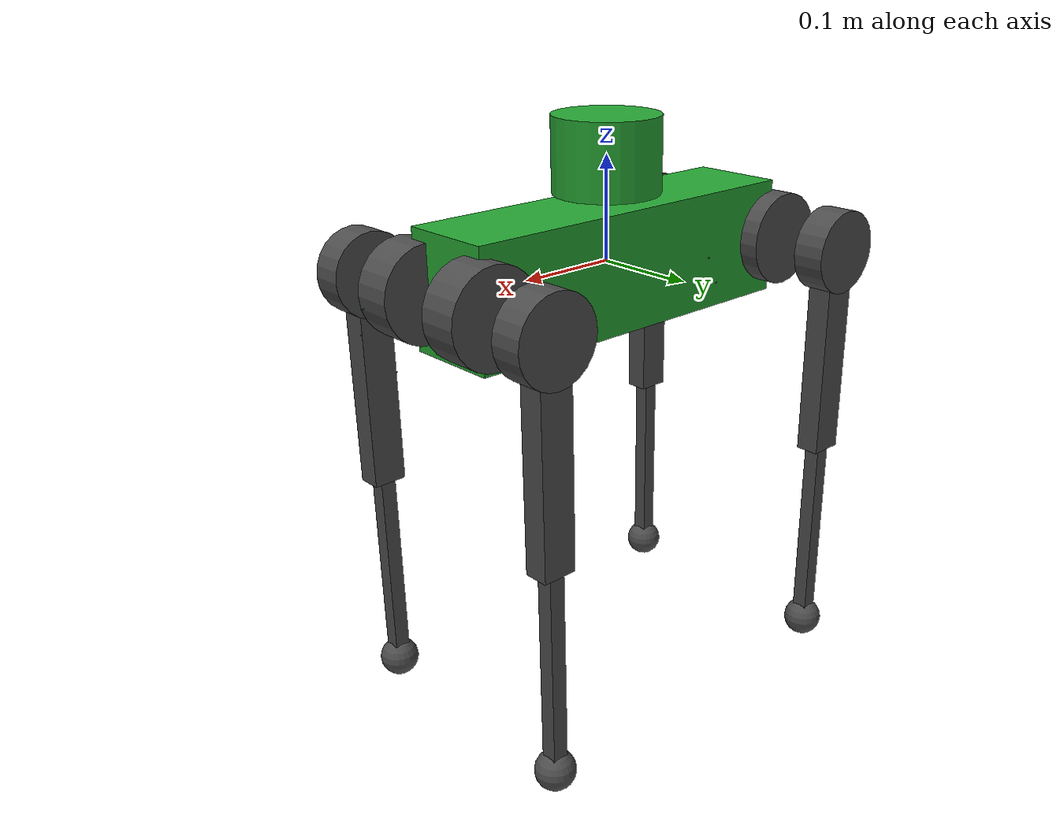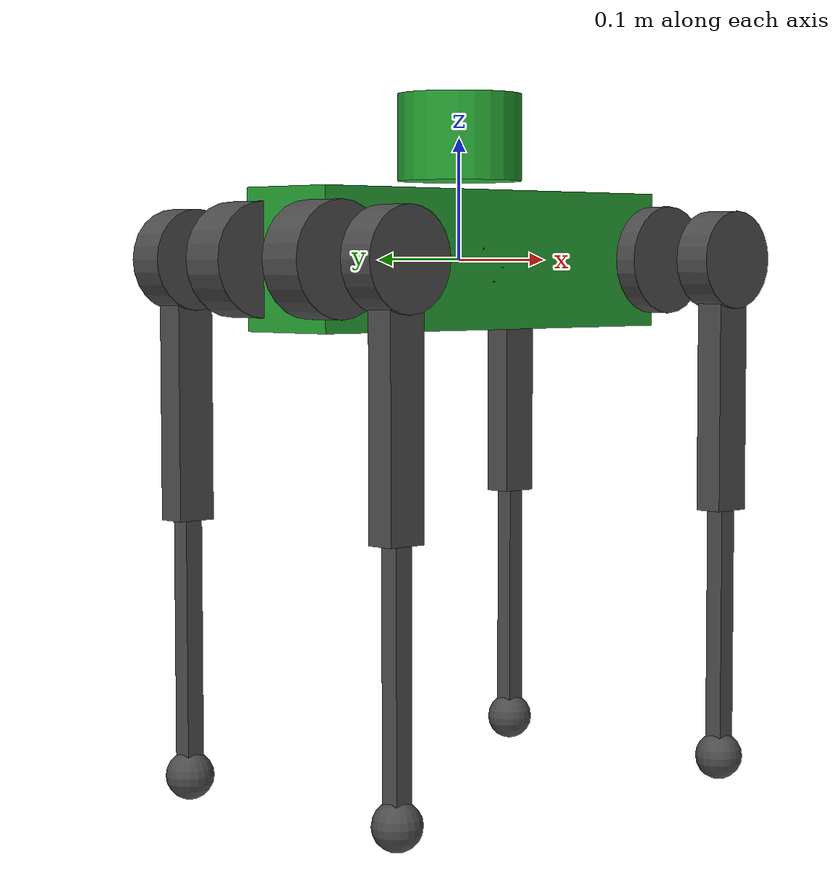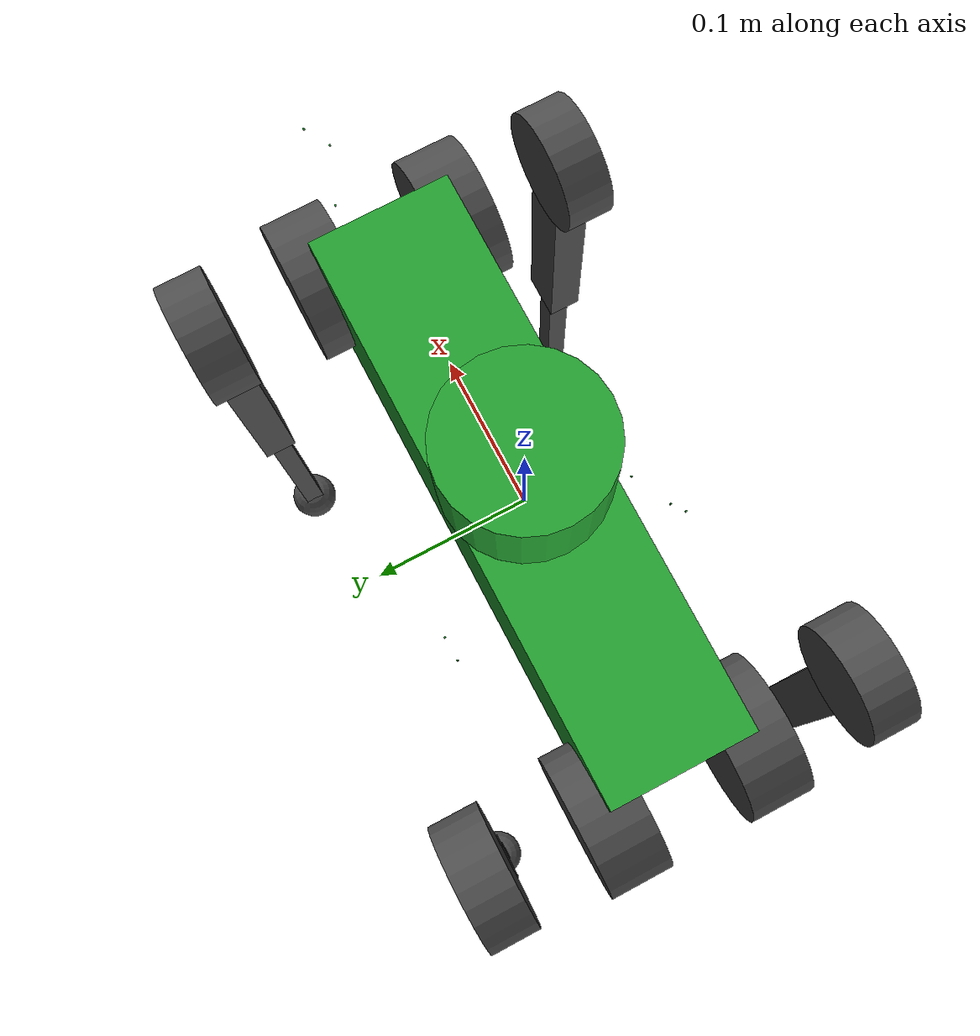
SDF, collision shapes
<?xml version='1.0'?>
<sdf version='1.7'>
  <model name='go1'>
    <link name='base'>
      <inertial>
        <pose>0.019196 0.001711 0.013585 0 -0 0</pose>
        <mass>6.04508</mass>
        <inertia>
          <ixx>0.0251921</ixx>
          <ixy>0.000428936</ixy>
          <ixz>0.00187116</ixz>
          <iyy>0.0743193</iyy>
          <iyz>0.000181968</iyz>
          <izz>0.0757561</izz>
        </inertia>
      </inertial>
      <collision name='base_fixed_joint_lump__trunk_collision'>
        <pose>0 0 0 0 -0 0</pose>
        <geometry>
          <box>
            <size>0.3762 0.0935 0.114</size>
          </box>
        </geometry>
        <surface>
          <contact>
            <ode>
              <kp>1e+06</kp>
              <kd>1</kd>
            </ode>
          </contact>
          <friction>
            <ode>
              <mu>0.2</mu>
              <mu2>0.2</mu2>
            </ode>
          </friction>
        </surface>
      </collision>
      <collision name='base_fixed_joint_lump__camera_chin_collision_1'>
        <pose>0.2522 0.0125 -0.0436 3.14159 1.5708 0</pose>
        <geometry>
          <box>
            <size>0.001 0.001 0.001</size>
          </box>
        </geometry>
        <surface>
          <contact>
            <ode/>
          </contact>
          <friction>
            <ode/>
          </friction>
        </surface>
      </collision>
      <collision name='base_fixed_joint_lump__camera_face_collision_2'>
        <pose>0.2785 0.0125 0.0167 3.14159 -0 0</pose>
        <geometry>
          <box>
            <size>0.001 0.001 0.001</size>
          </box>
        </geometry>
        <surface>
          <contact>
            <ode/>
          </contact>
          <friction>
            <ode/>
          </friction>
        </surface>
      </collision>
      <collision name='base_fixed_joint_lump__camera_left_collision_3'>
        <pose>-0.066 0.082 -0.0176 3.14159 0.2618 1.5708</pose>
        <geometry>
          <box>
            <size>0.001 0.001 0.001</size>
          </box>
        </geometry>
        <surface>
          <contact>
            <ode/>
          </contact>
          <friction>
            <ode/>
          </friction>
        </surface>
      </collision>
      <collision name='base_fixed_joint_lump__camera_rearDown_collision_4'>
        <pose>-0.0825 0.0125 -0.04365 3.14159 1.5708 0</pose>
        <geometry>
          <box>
            <size>0.001 0.001 0.001</size>
          </box>
        </geometry>
        <surface>
          <contact>
            <ode/>
          </contact>
          <friction>
            <ode/>
          </friction>
        </surface>
      </collision>
      <collision name='base_fixed_joint_lump__camera_right_collision_5'>
        <pose>-0.041 -0.082 -0.0176 3.14159 0.2618 -1.5708</pose>
        <geometry>
          <box>
            <size>0.001 0.001 0.001</size>
          </box>
        </geometry>
        <surface>
          <contact>
            <ode/>
          </contact>
          <friction>
            <ode/>
          </friction>
        </surface>
      </collision>
      <collision name='base_fixed_joint_lump__imu_link_collision_6'>
        <pose>-0.01592 -0.06659 -0.00617 0 -0 0</pose>
        <geometry>
          <box>
            <size>0.001 0.001 0.001</size>
          </box>
        </geometry>
        <surface>
          <contact>
            <ode/>
          </contact>
          <friction>
            <ode>
              <mu>0.2</mu>
              <mu2>0.2</mu2>
            </ode>
          </friction>
        </surface>
      </collision>
      <collision name='base_fixed_joint_lump__ultraSound_face_collision_7'>
        <pose>0.2747 0 -0.0088 0 -0 0</pose>
        <geometry>
          <box>
            <size>0.001 0.001 0.001</size>
          </box>
        </geometry>
      </collision>
      <collision name='base_fixed_joint_lump__ultraSound_left_collision_8'>
        <pose>-0.0535 0.0826 0.00868 0 0.2618 1.5708</pose>
        <geometry>
          <box>
            <size>0.001 0.001 0.001</size>
          </box>
        </geometry>
      </collision>
      <collision name='base_fixed_joint_lump__ultraSound_right_collision_9'>
        <pose>-0.0535 -0.0826 0.00868 0 0.2618 -1.5708</pose>
        <geometry>
          <box>
            <size>0.001 0.001 0.001</size>
          </box>
        </geometry>
      </collision>
      <collision name='base_fixed_joint_lump__velodyne_base_link_collision_10'>
        <pose>0 0 0.10085 0 -0 0</pose>
        <geometry>
          <cylinder>
            <length>0.0717</length>
            <radius>0.0516</radius>
          </cylinder>
        </geometry>
      </collision>
      <visual name='base_visual'>
        <pose>0 0 0 0 -0 0</pose>
        <geometry>
          <box>
            <size>0.001 0.001 0.001</size>
          </box>
        </geometry>
        <material>
          <script>
            <name>Gazebo/Green</name>
            <uri>file://media/materials/scripts/gazebo.material</uri>
          </script>
        </material>
      </visual>
      <visual name='base_fixed_joint_lump__trunk_visual_1'>
        <pose>0 0 0 0 -0 0</pose>
        <geometry>
          <mesh>
            <scale>1 1 1</scale>
            <uri>package://go1/meshes/trunk.dae</uri>
          </mesh>
        </geometry>
      </visual>
      <visual name='base_fixed_joint_lump__camera_chin_visual_2'>
        <pose>0.2522 0.0125 -0.0436 3.14159 1.5708 0</pose>
        <geometry>
          <mesh>
            <scale>1 1 1</scale>
            <uri>package://go1/meshes/depthCamera.dae</uri>
          </mesh>
        </geometry>
      </visual>
      <visual name='base_fixed_joint_lump__camera_face_visual_3'>
        <pose>0.2785 0.0125 0.0167 3.14159 -0 0</pose>
        <geometry>
          <mesh>
            <scale>1 1 1</scale>
            <uri>package://go1/meshes/depthCamera.dae</uri>
          </mesh>
        </geometry>
      </visual>
      <visual name='base_fixed_joint_lump__camera_left_visual_4'>
        <pose>-0.066 0.082 -0.0176 3.14159 0.2618 1.5708</pose>
        <geometry>
          <mesh>
            <scale>1 1 1</scale>
            <uri>package://go1/meshes/depthCamera.dae</uri>
          </mesh>
        </geometry>
      </visual>
      <visual name='base_fixed_joint_lump__camera_rearDown_visual_5'>
        <pose>-0.0825 0.0125 -0.04365 3.14159 1.5708 0</pose>
        <geometry>
          <mesh>
            <scale>1 1 1</scale>
            <uri>package://go1/meshes/depthCamera.dae</uri>
          </mesh>
        </geometry>
      </visual>
      <visual name='base_fixed_joint_lump__camera_right_visual_6'>
        <pose>-0.041 -0.082 -0.0176 3.14159 0.2618 -1.5708</pose>
        <geometry>
          <mesh>
            <scale>1 1 1</scale>
            <uri>package://go1/meshes/depthCamera.dae</uri>
          </mesh>
        </geometry>
      </visual>
      <visual name='base_fixed_joint_lump__imu_link_visual_7'>
        <pose>-0.01592 -0.06659 -0.00617 0 -0 0</pose>
        <geometry>
          <box>
            <size>0.001 0.001 0.001</size>
          </box>
        </geometry>
        <material>
          <script>
            <name>Gazebo/Red</name>
            <uri>file://media/materials/scripts/gazebo.material</uri>
          </script>
        </material>
      </visual>
      <visual name='base_fixed_joint_lump__ultraSound_face_visual_8'>
        <pose>0.2747 0 -0.0088 0 -0 0</pose>
        <geometry>
          <mesh>
            <scale>1 1 1</scale>
            <uri>package://go1/meshes/ultraSound.dae</uri>
          </mesh>
        </geometry>
      </visual>
      <visual name='base_fixed_joint_lump__ultraSound_left_visual_9'>
        <pose>-0.0535 0.0826 0.00868 0 0.2618 1.5708</pose>
        <geometry>
          <mesh>
            <scale>1 1 1</scale>
            <uri>package://go1/meshes/ultraSound.dae</uri>
          </mesh>
        </geometry>
      </visual>
      <visual name='base_fixed_joint_lump__ultraSound_right_visual_10'>
        <pose>-0.0535 -0.0826 0.00868 0 0.2618 -1.5708</pose>
        <geometry>
          <mesh>
            <scale>1 1 1</scale>
            <uri>package://go1/meshes/ultraSound.dae</uri>
          </mesh>
        </geometry>
      </visual>
      <visual name='base_fixed_joint_lump__velodyne_base_link_visual_11'>
        <pose>0 0 0.065 0 -0 0</pose>
        <geometry>
          <mesh>
            <scale>1 1 1</scale>
            <uri>package://go1/meshes/VLP16_base_1.dae</uri>
          </mesh>
        </geometry>
      </visual>
      <visual name='base_fixed_joint_lump__velodyne_base_link_visual_12'>
        <pose>0 0 0.065 0 -0 0</pose>
        <geometry>
          <mesh>
            <scale>1 1 1</scale>
            <uri>package://go1/meshes/VLP16_base_2.dae</uri>
          </mesh>
        </geometry>
      </visual>
      <visual name='base_fixed_joint_lump__velodyne_visual_13'>
        <pose>0 0 0.065 0 -0 0</pose>
        <geometry>
          <mesh>
            <scale>1 1 1</scale>
            <uri>package://go1/meshes/VLP16_scan.dae</uri>
          </mesh>
        </geometry>
      </visual>
      <gravity>1</gravity>
      <sensor name='camera_chin_camera' type='depth'>
        <update_rate>16</update_rate>
        <camera>
          <horizontal_fov>2.094</horizontal_fov>
          <image>
            <width>928</width>
            <height>800</height>
            <format>R8G8B8</format>
          </image>
          <clip>
            <near>0.1</near>
            <far>5</far>
          </clip>
        </camera>
        <plugin name='camera_chin_controller' filename='libgazebo_ros_openni_kinect.so'>
          <baseline>0.025</baseline>
          <alwaysOn>1</alwaysOn>
          <updateRate>0.0</updateRate>
          <cameraName>camera_chin_ir</cameraName>
          <imageTopicName>/camera_chin/color/image_raw</imageTopicName>
          <cameraInfoTopicName>/camera_chin/color/camera_info</cameraInfoTopicName>
          <depthImageTopicName>/camera_chin/depth/image_raw</depthImageTopicName>
          <depthImageInfoTopicName>/camera_chin/depth/camera_info</depthImageInfoTopicName>
          <pointCloudTopicName>/cam2/point_cloud_chin</pointCloudTopicName>
          <frameName>camera_optical_chin</frameName>
          <pointCloudCutoff>0.1</pointCloudCutoff>
          <pointCloudCutoffMax>1.5</pointCloudCutoffMax>
          <distortionK1>0.0</distortionK1>
          <distortionK2>0.0</distortionK2>
          <distortionK3>0.0</distortionK3>
          <distortionT1>0.0</distortionT1>
          <distortionT2>0.0</distortionT2>
          <CxPrime>0</CxPrime>
          <Cx>0.0045</Cx>
          <Cy>0.0039</Cy>
          <focalLength>0</focalLength>
          <hackBaseline>0</hackBaseline>
        </plugin>
        <pose>0.2522 0.0125 -0.0436 3.14159 1.57079 3e-06</pose>
      </sensor>
      <sensor name='camera_face_camera' type='depth'>
        <update_rate>16</update_rate>
        <camera>
          <horizontal_fov>2.094</horizontal_fov>
          <image>
            <width>928</width>
            <height>800</height>
            <format>R8G8B8</format>
          </image>
          <clip>
            <near>0.1</near>
            <far>5</far>
          </clip>
        </camera>
        <plugin name='camera_face_controller' filename='libgazebo_ros_openni_kinect.so'>
          <baseline>0.025</baseline>
          <alwaysOn>1</alwaysOn>
          <updateRate>0.0</updateRate>
          <cameraName>camera_face_ir</cameraName>
          <imageTopicName>/camera_face/color/image_raw</imageTopicName>
          <cameraInfoTopicName>/camera_face/color/camera_info</cameraInfoTopicName>
          <depthImageTopicName>/camera_face/depth/image_raw</depthImageTopicName>
          <depthImageInfoTopicName>/camera_face/depth/camera_info</depthImageInfoTopicName>
          <pointCloudTopicName>/cam1/point_cloud_face</pointCloudTopicName>
          <frameName>camera_optical_face</frameName>
          <pointCloudCutoff>0.1</pointCloudCutoff>
          <pointCloudCutoffMax>1.5</pointCloudCutoffMax>
          <distortionK1>0.0</distortionK1>
          <distortionK2>0.0</distortionK2>
          <distortionK3>0.0</distortionK3>
          <distortionT1>0.0</distortionT1>
          <distortionT2>0.0</distortionT2>
          <CxPrime>0</CxPrime>
          <Cx>0.0045</Cx>
          <Cy>0.0039</Cy>
          <focalLength>0</focalLength>
          <hackBaseline>0</hackBaseline>
        </plugin>
        <pose>0.2785 0.0125 0.0167 3.14159 -0 0</pose>
      </sensor>
      <sensor name='camera_left_camera' type='depth'>
        <update_rate>16</update_rate>
        <camera>
          <horizontal_fov>2.094</horizontal_fov>
          <image>
            <width>928</width>
            <height>800</height>
            <format>R8G8B8</format>
          </image>
          <clip>
            <near>0.1</near>
            <far>5</far>
          </clip>
        </camera>
        <plugin name='camera_left_controller' filename='libgazebo_ros_openni_kinect.so'>
          <baseline>0.025</baseline>
          <alwaysOn>1</alwaysOn>
          <updateRate>0.0</updateRate>
          <cameraName>camera_left_ir</cameraName>
          <imageTopicName>/camera_left/color/image_raw</imageTopicName>
          <cameraInfoTopicName>/camera_left/color/camera_info</cameraInfoTopicName>
          <depthImageTopicName>/camera_left/depth/image_raw</depthImageTopicName>
          <depthImageInfoTopicName>/camera_left/depth/camera_info</depthImageInfoTopicName>
          <pointCloudTopicName>/cam3/point_cloud_left</pointCloudTopicName>
          <frameName>camera_optical_left</frameName>
          <pointCloudCutoff>0.1</pointCloudCutoff>
          <pointCloudCutoffMax>1.5</pointCloudCutoffMax>
          <distortionK1>0.0</distortionK1>
          <distortionK2>0.0</distortionK2>
          <distortionK3>0.0</distortionK3>
          <distortionT1>0.0</distortionT1>
          <distortionT2>0.0</distortionT2>
          <CxPrime>0</CxPrime>
          <Cx>0.0045</Cx>
          <Cy>0.0039</Cy>
          <focalLength>0</focalLength>
          <hackBaseline>0</hackBaseline>
        </plugin>
        <pose>-0.066 0.082 -0.0176 3.14159 0.2618 1.5708</pose>
      </sensor>
      <sensor name='camera_rearDown_camera' type='depth'>
        <update_rate>16</update_rate>
        <camera>
          <horizontal_fov>2.094</horizontal_fov>
          <image>
            <width>928</width>
            <height>800</height>
            <format>R8G8B8</format>
          </image>
          <clip>
            <near>0.1</near>
            <far>5</far>
          </clip>
        </camera>
        <plugin name='camera_rearDown_controller' filename='libgazebo_ros_openni_kinect.so'>
          <baseline>0.025</baseline>
          <alwaysOn>1</alwaysOn>
          <updateRate>0.0</updateRate>
          <cameraName>camera_rearDown_ir</cameraName>
          <imageTopicName>/camera_rearDown/color/image_raw</imageTopicName>
          <cameraInfoTopicName>/camera_rearDown/color/camera_info</cameraInfoTopicName>
          <depthImageTopicName>/camera_rearDown/depth/image_raw</depthImageTopicName>
          <depthImageInfoTopicName>/camera_rearDown/depth/camera_info</depthImageInfoTopicName>
          <pointCloudTopicName>/cam5/point_cloud_rearDown</pointCloudTopicName>
          <frameName>camera_optical_rearDown</frameName>
          <pointCloudCutoff>0.1</pointCloudCutoff>
          <pointCloudCutoffMax>1.5</pointCloudCutoffMax>
          <distortionK1>0.0</distortionK1>
          <distortionK2>0.0</distortionK2>
          <distortionK3>0.0</distortionK3>
          <distortionT1>0.0</distortionT1>
          <distortionT2>0.0</distortionT2>
          <CxPrime>0</CxPrime>
          <Cx>0.0045</Cx>
          <Cy>0.0039</Cy>
          <focalLength>0</focalLength>
          <hackBaseline>0</hackBaseline>
        </plugin>
        <pose>-0.0825 0.0125 -0.04365 3.14159 1.57079 3e-06</pose>
      </sensor>
      <sensor name='camera_right_camera' type='depth'>
        <update_rate>16</update_rate>
        <camera>
          <horizontal_fov>2.094</horizontal_fov>
          <image>
            <width>928</width>
            <height>800</height>
            <format>R8G8B8</format>
          </image>
          <clip>
            <near>0.1</near>
            <far>5</far>
          </clip>
        </camera>
        <plugin name='camera_right_controller' filename='libgazebo_ros_openni_kinect.so'>
          <baseline>0.025</baseline>
          <alwaysOn>1</alwaysOn>
          <updateRate>0.0</updateRate>
          <cameraName>camera_right_ir</cameraName>
          <imageTopicName>/camera_right/color/image_raw</imageTopicName>
          <cameraInfoTopicName>/camera_right/color/camera_info</cameraInfoTopicName>
          <depthImageTopicName>/camera_right/depth/image_raw</depthImageTopicName>
          <depthImageInfoTopicName>/camera_right/depth/camera_info</depthImageInfoTopicName>
          <pointCloudTopicName>/cam4/point_cloud_right</pointCloudTopicName>
          <frameName>camera_optical_right</frameName>
          <pointCloudCutoff>0.1</pointCloudCutoff>
          <pointCloudCutoffMax>1.5</pointCloudCutoffMax>
          <distortionK1>0.0</distortionK1>
          <distortionK2>0.0</distortionK2>
          <distortionK3>0.0</distortionK3>
          <distortionT1>0.0</distortionT1>
          <distortionT2>0.0</distortionT2>
          <CxPrime>0</CxPrime>
          <Cx>0.0045</Cx>
          <Cy>0.0039</Cy>
          <focalLength>0</focalLength>
          <hackBaseline>0</hackBaseline>
        </plugin>
        <pose>-0.041 -0.082 -0.0176 3.14159 0.2618 -1.5708</pose>
      </sensor>
      <gravity>1</gravity>
      <sensor name='imu_sensor' type='imu'>
        <always_on>1</always_on>
        <update_rate>1000</update_rate>
        <visualize>1</visualize>
        <topic>__default_topic__</topic>
        <plugin name='imu_plugin' filename='libgazebo_ros_imu_sensor.so'>
          <topicName>trunk_imu</topicName>
          <bodyName>imu_link</bodyName>
          <updateRateHZ>1000.0</updateRateHZ>
          <gaussianNoise>0.0</gaussianNoise>
          <xyzOffset>0 0 0</xyzOffset>
          <rpyOffset>0 0 0</rpyOffset>
          <frameName>imu_link</frameName>
        </plugin>
        <pose>-0.01592 -0.06659 -0.00617 0 -0 0</pose>
      </sensor>
      <sensor name='velodyne-VLP16' type='ray'>
        <visualize>0</visualize>
        <update_rate>10</update_rate>
        <ray>
          <scan>
            <horizontal>
              <samples>1024</samples>
              <resolution>1</resolution>
              <min_angle>-3.14159</min_angle>
              <max_angle>3.14159</max_angle>
            </horizontal>
            <vertical>
              <samples>16</samples>
              <resolution>1</resolution>
              <min_angle>-0.261799</min_angle>
              <max_angle>0.261799</max_angle>
            </vertical>
          </scan>
          <range>
            <min>0.3</min>
            <max>101</max>
            <resolution>0.001</resolution>
          </range>
          <noise>
            <type>gaussian</type>
            <mean>0</mean>
            <stddev>0</stddev>
          </noise>
        </ray>
        <plugin name='gazebo_ros_laser_controller' filename='libgazebo_ros_velodyne_laser.so'>
          <topicName>velodyne_points</topicName>
          <frameName>velodyne</frameName>
          <min_range>0.9</min_range>
          <max_range>100</max_range>
          <gaussianNoise>0.008</gaussianNoise>
        </plugin>
        <pose>0 0 0.1027 0 -0 0</pose>
      </sensor>
    </link>
    <joint name='FL_hip_joint' type='revolute'>
      <pose relative_to='base'>0.1881 0.04675 0 0 -0 0</pose>
      <parent>base</parent>
      <child>FL_hip</child>
      <axis>
        <xyz>1 0 0</xyz>
        <limit>
          <lower>-1.0472</lower>
          <upper>1.0472</upper>
          <effort>23.7</effort>
          <velocity>30.1</velocity>
        </limit>
        <dynamics>
          <damping>0.01</damping>
          <friction>0.2</friction>
          <spring_reference>0</spring_reference>
          <spring_stiffness>0</spring_stiffness>
        </dynamics>
      </axis>
    </joint>
    <link name='FL_hip'>
      <pose relative_to='FL_hip_joint'>0 0 0 0 -0 0</pose>
      <inertial>
        <pose>-0.00541 -0.00074 6e-06 0 -0 0</pose>
        <mass>0.591</mass>
        <inertia>
          <ixx>0.000374268</ixx>
          <ixy>3.68444e-05</ixy>
          <ixz>-9.86754e-07</ixz>
          <iyy>0.000635924</iyy>
          <iyz>-1.17289e-06</iyz>
          <izz>0.000457647</izz>
        </inertia>
      </inertial>
      <collision name='FL_hip_collision'>
        <pose>0 0 0 1.5708 -0 0</pose>
        <geometry>
          <cylinder>
            <length>0.04</length>
            <radius>0.046</radius>
          </cylinder>
        </geometry>
        <surface>
          <contact>
            <ode/>
          </contact>
          <friction>
            <ode>
              <mu>0.2</mu>
              <mu2>0.2</mu2>
            </ode>
          </friction>
        </surface>
      </collision>
      <collision name='FL_hip_fixed_joint_lump__FL_thigh_shoulder_collision_1'>
        <pose>0 0.08 0 1.5708 -0 0</pose>
        <geometry>
          <cylinder>
            <length>0.032</length>
            <radius>0.041</radius>
          </cylinder>
        </geometry>
      </collision>
      <visual name='FL_hip_visual'>
        <pose>0 0 0 0 -0 0</pose>
        <geometry>
          <mesh>
            <scale>1 1 1</scale>
            <uri>package://go1/meshes/hip.dae</uri>
          </mesh>
        </geometry>
        <material>
          <script>
            <name>Gazebo/DarkGrey</name>
            <uri>file://media/materials/scripts/gazebo.material</uri>
          </script>
        </material>
      </visual>
    </link>
    <joint name='FL_thigh_joint' type='revolute'>
      <pose relative_to='FL_hip'>0 0.08 0 0 -0 0</pose>
      <parent>FL_hip</parent>
      <child>FL_thigh</child>
      <axis>
        <xyz>0 1 0</xyz>
        <limit>
          <lower>-0.663225</lower>
          <upper>2.96706</upper>
          <effort>23.7</effort>
          <velocity>30.1</velocity>
        </limit>
        <dynamics>
          <damping>0.01</damping>
          <friction>0.2</friction>
          <spring_reference>0</spring_reference>
          <spring_stiffness>0</spring_stiffness>
        </dynamics>
      </axis>
    </joint>
    <link name='FL_thigh'>
      <pose relative_to='FL_thigh_joint'>0 0 0 0 -0 0</pose>
      <inertial>
        <pose>-0.003468 -0.018947 -0.032736 0 -0 0</pose>
        <mass>0.92</mass>
        <inertia>
          <ixx>0.00585156</ixx>
          <ixy>1.78328e-06</ixy>
          <ixz>0.000328291</ixz>
          <iyy>0.00559616</iyy>
          <iyz>2.14307e-05</iyz>
          <izz>0.00107157</izz>
        </inertia>
      </inertial>
      <collision name='FL_thigh_collision'>
        <pose>0 0 -0.1065 0 1.5708 0</pose>
        <geometry>
          <box>
            <size>0.213 0.0245 0.034</size>
          </box>
        </geometry>
        <surface>
          <contact>
            <ode>
              <kp>1e+06</kp>
              <kd>1</kd>
            </ode>
          </contact>
          <friction>
            <ode>
              <mu>0.2</mu>
              <mu2>0.2</mu2>
            </ode>
          </friction>
        </surface>
      </collision>
      <visual name='FL_thigh_visual'>
        <pose>0 0 0 0 -0 0</pose>
        <geometry>
          <mesh>
            <scale>1 1 1</scale>
            <uri>package://go1/meshes/thigh.dae</uri>
          </mesh>
        </geometry>
        <material>
          <script>
            <name>Gazebo/DarkGrey</name>
            <uri>file://media/materials/scripts/gazebo.material</uri>
          </script>
        </material>
      </visual>
      <self_collide>1</self_collide>
    </link>
    <joint name='FL_calf_joint' type='revolute'>
      <pose relative_to='FL_thigh'>0 0 -0.213 0 -0 0</pose>
      <parent>FL_thigh</parent>
      <child>FL_calf</child>
      <axis>
        <xyz>0 1 0</xyz>
        <limit>
          <lower>-2.72271</lower>
          <upper>-0.837758</upper>
          <effort>23.7</effort>
          <velocity>30.1</velocity>
        </limit>
        <dynamics>
          <damping>0.01</damping>
          <friction>0.2</friction>
          <spring_reference>0</spring_reference>
          <spring_stiffness>0</spring_stiffness>
        </dynamics>
      </axis>
    </joint>
    <link name='FL_calf'>
      <pose relative_to='FL_calf_joint'>0 0 0 0 -0 0</pose>
      <inertial>
        <pose>0.004311 0.000896 -0.150771 0 -0 0</pose>
        <mass>0.191</mass>
        <inertia>
          <ixx>0.00328762</ixx>
          <ixy>1.1028e-06</ixy>
          <ixz>-0.00012883</ixz>
          <iyy>0.00330576</iyy>
          <iyz>-2.92778e-05</iyz>
          <izz>4.15697e-05</izz>
        </inertia>
      </inertial>
      <collision name='FL_calf_collision'>
        <pose>0 0 -0.1065 0 1.5708 0</pose>
        <geometry>
          <box>
            <size>0.213 0.016 0.016</size>
          </box>
        </geometry>
        <surface>
          <contact>
            <ode/>
          </contact>
          <friction>
            <ode>
              <mu>0.2</mu>
              <mu2>0.2</mu2>
            </ode>
          </friction>
        </surface>
      </collision>
      <collision name='FL_calf_fixed_joint_lump__FL_foot_collision_1'>
        <pose>0 0 -0.213 0 -0 0</pose>
        <geometry>
          <sphere>
            <radius>0.02</radius>
          </sphere>
        </geometry>
        <surface>
          <contact>
            <ode>
              <kp>1e+06</kp>
              <kd>1</kd>
            </ode>
          </contact>
          <friction>
            <ode>
              <mu>0.6</mu>
              <mu2>0.6</mu2>
            </ode>
          </friction>
        </surface>
      </collision>
      <visual name='FL_calf_visual'>
        <pose>0 0 0 0 -0 0</pose>
        <geometry>
          <mesh>
            <scale>1 1 1</scale>
            <uri>package://go1/meshes/calf.dae</uri>
          </mesh>
        </geometry>
      </visual>
      <visual name='FL_calf_fixed_joint_lump__FL_foot_visual_1'>
        <pose>0 0 -0.213 0 -0 0</pose>
        <geometry>
          <sphere>
            <radius>0.01</radius>
          </sphere>
        </geometry>
        <plugin name='drawForcePlugin' filename='libunitreeDrawForcePlugin.so'>
          <topicName>FL_foot_contact</topicName>
        </plugin>
        <material>
          <script>
            <name>Gazebo/DarkGrey</name>
            <uri>file://media/materials/scripts/gazebo.material</uri>
          </script>
        </material>
      </visual>
      <sensor name='FL_foot_contact' type='contact'>
        <update_rate>100</update_rate>
        <plugin name='contactPlugin' filename='libunitreeFootContactPlugin.so'/>
        <contact>
          <collision>FL_calf_fixed_joint_lump__FL_foot_collision_1</collision>
          <topic>__default_topic__</topic>
        </contact>
      </sensor>
      <self_collide>1</self_collide>
      <self_collide>1</self_collide>
    </link>
    <joint name='FR_hip_joint' type='revolute'>
      <pose relative_to='base'>0.1881 -0.04675 0 0 -0 0</pose>
      <parent>base</parent>
      <child>FR_hip</child>
      <axis>
        <xyz>1 0 0</xyz>
        <limit>
          <lower>-1.0472</lower>
          <upper>1.0472</upper>
          <effort>23.7</effort>
          <velocity>30.1</velocity>
        </limit>
        <dynamics>
          <damping>0.01</damping>
          <friction>0.2</friction>
          <spring_reference>0</spring_reference>
          <spring_stiffness>0</spring_stiffness>
        </dynamics>
      </axis>
    </joint>
    <link name='FR_hip'>
      <pose relative_to='FR_hip_joint'>0 0 0 0 -0 0</pose>
      <inertial>
        <pose>-0.00541 0.00074 6e-06 0 -0 0</pose>
        <mass>0.591</mass>
        <inertia>
          <ixx>0.000374268</ixx>
          <ixy>-3.68444e-05</ixy>
          <ixz>-9.86754e-07</ixz>
          <iyy>0.000635924</iyy>
          <iyz>1.17289e-06</iyz>
          <izz>0.000457647</izz>
        </inertia>
      </inertial>
      <collision name='FR_hip_collision'>
        <pose>0 0 0 1.5708 -0 0</pose>
        <geometry>
          <cylinder>
            <length>0.04</length>
            <radius>0.046</radius>
          </cylinder>
        </geometry>
        <surface>
          <contact>
            <ode/>
          </contact>
          <friction>
            <ode>
              <mu>0.2</mu>
              <mu2>0.2</mu2>
            </ode>
          </friction>
        </surface>
      </collision>
      <collision name='FR_hip_fixed_joint_lump__FR_thigh_shoulder_collision_1'>
        <pose>0 -0.08 0 1.5708 -0 0</pose>
        <geometry>
          <cylinder>
            <length>0.032</length>
            <radius>0.041</radius>
          </cylinder>
        </geometry>
      </collision>
      <visual name='FR_hip_visual'>
        <pose>0 0 0 3.14159 -0 0</pose>
        <geometry>
          <mesh>
            <scale>1 1 1</scale>
            <uri>package://go1/meshes/hip.dae</uri>
          </mesh>
        </geometry>
        <material>
          <script>
            <name>Gazebo/DarkGrey</name>
            <uri>file://media/materials/scripts/gazebo.material</uri>
          </script>
        </material>
      </visual>
    </link>
    <joint name='FR_thigh_joint' type='revolute'>
      <pose relative_to='FR_hip'>0 -0.08 0 0 -0 0</pose>
      <parent>FR_hip</parent>
      <child>FR_thigh</child>
      <axis>
        <xyz>0 1 0</xyz>
        <limit>
          <lower>-0.663225</lower>
          <upper>2.96706</upper>
          <effort>23.7</effort>
          <velocity>30.1</velocity>
        </limit>
        <dynamics>
          <damping>0.01</damping>
          <friction>0.2</friction>
          <spring_reference>0</spring_reference>
          <spring_stiffness>0</spring_stiffness>
        </dynamics>
      </axis>
    </joint>
    <link name='FR_thigh'>
      <pose relative_to='FR_thigh_joint'>0 0 0 0 -0 0</pose>
      <inertial>
        <pose>-0.003468 0.018947 -0.032736 0 -0 0</pose>
        <mass>0.92</mass>
        <inertia>
          <ixx>0.00585156</ixx>
          <ixy>-1.78328e-06</ixy>
          <ixz>0.000328291</ixz>
          <iyy>0.00559616</iyy>
          <iyz>-2.14307e-05</iyz>
          <izz>0.00107157</izz>
        </inertia>
      </inertial>
      <collision name='FR_thigh_collision'>
        <pose>0 0 -0.1065 0 1.5708 0</pose>
        <geometry>
          <box>
            <size>0.213 0.0245 0.034</size>
          </box>
        </geometry>
        <surface>
          <contact>
            <ode>
              <kp>1e+06</kp>
              <kd>1</kd>
            </ode>
          </contact>
          <friction>
            <ode>
              <mu>0.2</mu>
              <mu2>0.2</mu2>
            </ode>
          </friction>
        </surface>
      </collision>
      <visual name='FR_thigh_visual'>
        <pose>0 0 0 0 -0 0</pose>
        <geometry>
          <mesh>
            <scale>1 1 1</scale>
            <uri>package://go1/meshes/thigh_mirror.dae</uri>
          </mesh>
        </geometry>
        <material>
          <script>
            <name>Gazebo/DarkGrey</name>
            <uri>file://media/materials/scripts/gazebo.material</uri>
          </script>
        </material>
      </visual>
      <self_collide>1</self_collide>
    </link>
    <joint name='FR_calf_joint' type='revolute'>
      <pose relative_to='FR_thigh'>0 0 -0.213 0 -0 0</pose>
      <parent>FR_thigh</parent>
      <child>FR_calf</child>
      <axis>
        <xyz>0 1 0</xyz>
        <limit>
          <lower>-2.72271</lower>
          <upper>-0.837758</upper>
          <effort>23.7</effort>
          <velocity>30.1</velocity>
        </limit>
        <dynamics>
          <damping>0.01</damping>
          <friction>0.2</friction>
          <spring_reference>0</spring_reference>
          <spring_stiffness>0</spring_stiffness>
        </dynamics>
      </axis>
    </joint>
    <link name='FR_calf'>
      <pose relative_to='FR_calf_joint'>0 0 0 0 -0 0</pose>
      <inertial>
        <pose>0.004311 0.000896 -0.150771 0 -0 0</pose>
        <mass>0.191</mass>
        <inertia>
          <ixx>0.00328762</ixx>
          <ixy>1.1028e-06</ixy>
          <ixz>-0.00012883</ixz>
          <iyy>0.00330576</iyy>
          <iyz>-2.92778e-05</iyz>
          <izz>4.15697e-05</izz>
        </inertia>
      </inertial>
      <collision name='FR_calf_collision'>
        <pose>0 0 -0.1065 0 1.5708 0</pose>
        <geometry>
          <box>
            <size>0.213 0.016 0.016</size>
          </box>
        </geometry>
        <surface>
          <contact>
            <ode/>
          </contact>
          <friction>
            <ode>
              <mu>0.2</mu>
              <mu2>0.2</mu2>
            </ode>
          </friction>
        </surface>
      </collision>
      <collision name='FR_calf_fixed_joint_lump__FR_foot_collision_1'>
        <pose>0 0 -0.213 0 -0 0</pose>
        <geometry>
          <sphere>
            <radius>0.02</radius>
          </sphere>
        </geometry>
        <surface>
          <contact>
            <ode>
              <kp>1e+06</kp>
              <kd>1</kd>
            </ode>
          </contact>
          <friction>
            <ode>
              <mu>0.6</mu>
              <mu2>0.6</mu2>
            </ode>
          </friction>
        </surface>
      </collision>
      <visual name='FR_calf_visual'>
        <pose>0 0 0 0 -0 0</pose>
        <geometry>
          <mesh>
            <scale>1 1 1</scale>
            <uri>package://go1/meshes/calf.dae</uri>
          </mesh>
        </geometry>
      </visual>
      <visual name='FR_calf_fixed_joint_lump__FR_foot_visual_1'>
        <pose>0 0 -0.213 0 -0 0</pose>
        <geometry>
          <sphere>
            <radius>0.01</radius>
          </sphere>
        </geometry>
        <plugin name='drawForcePlugin' filename='libunitreeDrawForcePlugin.so'>
          <topicName>FR_foot_contact</topicName>
        </plugin>
        <material>
          <script>
            <name>Gazebo/DarkGrey</name>
            <uri>file://media/materials/scripts/gazebo.material</uri>
          </script>
        </material>
      </visual>
      <sensor name='FR_foot_contact' type='contact'>
        <update_rate>100</update_rate>
        <plugin name='contactPlugin' filename='libunitreeFootContactPlugin.so'/>
        <contact>
          <collision>FR_calf_fixed_joint_lump__FR_foot_collision_1</collision>
          <topic>__default_topic__</topic>
        </contact>
      </sensor>
      <self_collide>1</self_collide>
      <self_collide>1</self_collide>
    </link>
    <joint name='RL_hip_joint' type='revolute'>
      <pose relative_to='base'>-0.1881 0.04675 0 0 -0 0</pose>
      <parent>base</parent>
      <child>RL_hip</child>
      <axis>
        <xyz>1 0 0</xyz>
        <limit>
          <lower>-1.0472</lower>
          <upper>1.0472</upper>
          <effort>23.7</effort>
          <velocity>30.1</velocity>
        </limit>
        <dynamics>
          <damping>0.01</damping>
          <friction>0.2</friction>
          <spring_reference>0</spring_reference>
          <spring_stiffness>0</spring_stiffness>
        </dynamics>
      </axis>
    </joint>
    <link name='RL_hip'>
      <pose relative_to='RL_hip_joint'>0 0 0 0 -0 0</pose>
      <inertial>
        <pose>0.00541 -0.00074 6e-06 0 -0 0</pose>
        <mass>0.591</mass>
        <inertia>
          <ixx>0.000374268</ixx>
          <ixy>-3.68444e-05</ixy>
          <ixz>9.86754e-07</ixz>
          <iyy>0.000635924</iyy>
          <iyz>-1.17289e-06</iyz>
          <izz>0.000457647</izz>
        </inertia>
      </inertial>
      <collision name='RL_hip_collision'>
        <pose>0 0 0 1.5708 -0 0</pose>
        <geometry>
          <cylinder>
            <length>0.04</length>
            <radius>0.046</radius>
          </cylinder>
        </geometry>
        <surface>
          <contact>
            <ode/>
          </contact>
          <friction>
            <ode>
              <mu>0.2</mu>
              <mu2>0.2</mu2>
            </ode>
          </friction>
        </surface>
      </collision>
      <collision name='RL_hip_fixed_joint_lump__RL_thigh_shoulder_collision_1'>
        <pose>0 0.08 0 1.5708 -0 0</pose>
        <geometry>
          <cylinder>
            <length>0.032</length>
            <radius>0.041</radius>
          </cylinder>
        </geometry>
      </collision>
      <visual name='RL_hip_visual'>
        <pose>0 0 0 3.14159 0 3.14159</pose>
        <geometry>
          <mesh>
            <scale>1 1 1</scale>
            <uri>package://go1/meshes/hip.dae</uri>
          </mesh>
        </geometry>
        <material>
          <script>
            <name>Gazebo/DarkGrey</name>
            <uri>file://media/materials/scripts/gazebo.material</uri>
          </script>
        </material>
      </visual>
    </link>
    <joint name='RL_thigh_joint' type='revolute'>
      <pose relative_to='RL_hip'>0 0.08 0 0 -0 0</pose>
      <parent>RL_hip</parent>
      <child>RL_thigh</child>
      <axis>
        <xyz>0 1 0</xyz>
        <limit>
          <lower>-0.663225</lower>
          <upper>2.96706</upper>
          <effort>23.7</effort>
          <velocity>30.1</velocity>
        </limit>
        <dynamics>
          <damping>0.01</damping>
          <friction>0.2</friction>
          <spring_reference>0</spring_reference>
          <spring_stiffness>0</spring_stiffness>
        </dynamics>
      </axis>
    </joint>
    <link name='RL_thigh'>
      <pose relative_to='RL_thigh_joint'>0 0 0 0 -0 0</pose>
      <inertial>
        <pose>-0.003468 -0.018947 -0.032736 0 -0 0</pose>
        <mass>0.92</mass>
        <inertia>
          <ixx>0.00585156</ixx>
          <ixy>1.78328e-06</ixy>
          <ixz>0.000328291</ixz>
          <iyy>0.00559616</iyy>
          <iyz>2.14307e-05</iyz>
          <izz>0.00107157</izz>
        </inertia>
      </inertial>
      <collision name='RL_thigh_collision'>
        <pose>0 0 -0.1065 0 1.5708 0</pose>
        <geometry>
          <box>
            <size>0.213 0.0245 0.034</size>
          </box>
        </geometry>
        <surface>
          <contact>
            <ode>
              <kp>1e+06</kp>
              <kd>1</kd>
            </ode>
          </contact>
          <friction>
            <ode>
              <mu>0.2</mu>
              <mu2>0.2</mu2>
            </ode>
          </friction>
        </surface>
      </collision>
      <visual name='RL_thigh_visual'>
        <pose>0 0 0 0 -0 0</pose>
        <geometry>
          <mesh>
            <scale>1 1 1</scale>
            <uri>package://go1/meshes/thigh.dae</uri>
          </mesh>
        </geometry>
        <material>
          <script>
            <name>Gazebo/DarkGrey</name>
            <uri>file://media/materials/scripts/gazebo.material</uri>
          </script>
        </material>
      </visual>
      <self_collide>1</self_collide>
    </link>
    <joint name='RL_calf_joint' type='revolute'>
      <pose relative_to='RL_thigh'>0 0 -0.213 0 -0 0</pose>
      <parent>RL_thigh</parent>
      <child>RL_calf</child>
      <axis>
        <xyz>0 1 0</xyz>
        <limit>
          <lower>-2.72271</lower>
          <upper>-0.837758</upper>
          <effort>23.7</effort>
          <velocity>30.1</velocity>
        </limit>
        <dynamics>
          <damping>0.01</damping>
          <friction>0.2</friction>
          <spring_reference>0</spring_reference>
          <spring_stiffness>0</spring_stiffness>
        </dynamics>
      </axis>
    </joint>
    <link name='RL_calf'>
      <pose relative_to='RL_calf_joint'>0 0 0 0 -0 0</pose>
      <inertial>
        <pose>0.004311 0.000896 -0.150771 0 -0 0</pose>
        <mass>0.191</mass>
        <inertia>
          <ixx>0.00328762</ixx>
          <ixy>1.1028e-06</ixy>
          <ixz>-0.00012883</ixz>
          <iyy>0.00330576</iyy>
          <iyz>-2.92778e-05</iyz>
          <izz>4.15697e-05</izz>
        </inertia>
      </inertial>
      <collision name='RL_calf_collision'>
        <pose>0 0 -0.1065 0 1.5708 0</pose>
        <geometry>
          <box>
            <size>0.213 0.016 0.016</size>
          </box>
        </geometry>
        <surface>
          <contact>
            <ode/>
          </contact>
          <friction>
            <ode>
              <mu>0.2</mu>
              <mu2>0.2</mu2>
            </ode>
          </friction>
        </surface>
      </collision>
      <collision name='RL_calf_fixed_joint_lump__RL_foot_collision_1'>
        <pose>0 0 -0.213 0 -0 0</pose>
        <geometry>
          <sphere>
            <radius>0.02</radius>
          </sphere>
        </geometry>
        <surface>
          <contact>
            <ode>
              <kp>1e+06</kp>
              <kd>1</kd>
            </ode>
          </contact>
          <friction>
            <ode>
              <mu>0.6</mu>
              <mu2>0.6</mu2>
            </ode>
          </friction>
        </surface>
      </collision>
      <visual name='RL_calf_visual'>
        <pose>0 0 0 0 -0 0</pose>
        <geometry>
          <mesh>
            <scale>1 1 1</scale>
            <uri>package://go1/meshes/calf.dae</uri>
          </mesh>
        </geometry>
      </visual>
      <visual name='RL_calf_fixed_joint_lump__RL_foot_visual_1'>
        <pose>0 0 -0.213 0 -0 0</pose>
        <geometry>
          <sphere>
            <radius>0.01</radius>
          </sphere>
        </geometry>
        <plugin name='drawForcePlugin' filename='libunitreeDrawForcePlugin.so'>
          <topicName>RL_foot_contact</topicName>
        </plugin>
        <material>
          <script>
            <name>Gazebo/DarkGrey</name>
            <uri>file://media/materials/scripts/gazebo.material</uri>
          </script>
        </material>
      </visual>
      <sensor name='RL_foot_contact' type='contact'>
        <update_rate>100</update_rate>
        <plugin name='contactPlugin' filename='libunitreeFootContactPlugin.so'/>
        <contact>
          <collision>RL_calf_fixed_joint_lump__RL_foot_collision_1</collision>
          <topic>__default_topic__</topic>
        </contact>
      </sensor>
      <self_collide>1</self_collide>
      <self_collide>1</self_collide>
    </link>
    <joint name='RR_hip_joint' type='revolute'>
      <pose relative_to='base'>-0.1881 -0.04675 0 0 -0 0</pose>
      <parent>base</parent>
      <child>RR_hip</child>
      <axis>
        <xyz>1 0 0</xyz>
        <limit>
          <lower>-1.0472</lower>
          <upper>1.0472</upper>
          <effort>23.7</effort>
          <velocity>30.1</velocity>
        </limit>
        <dynamics>
          <damping>0.01</damping>
          <friction>0.2</friction>
          <spring_reference>0</spring_reference>
          <spring_stiffness>0</spring_stiffness>
        </dynamics>
      </axis>
    </joint>
    <link name='RR_hip'>
      <pose relative_to='RR_hip_joint'>0 0 0 0 -0 0</pose>
      <inertial>
        <pose>0.00541 0.00074 6e-06 0 -0 0</pose>
        <mass>0.591</mass>
        <inertia>
          <ixx>0.000374268</ixx>
          <ixy>3.68444e-05</ixy>
          <ixz>9.86754e-07</ixz>
          <iyy>0.000635924</iyy>
          <iyz>1.17289e-06</iyz>
          <izz>0.000457647</izz>
        </inertia>
      </inertial>
      <collision name='RR_hip_collision'>
        <pose>0 0 0 1.5708 -0 0</pose>
        <geometry>
          <cylinder>
            <length>0.04</length>
            <radius>0.046</radius>
          </cylinder>
        </geometry>
        <surface>
          <contact>
            <ode/>
          </contact>
          <friction>
            <ode>
              <mu>0.2</mu>
              <mu2>0.2</mu2>
            </ode>
          </friction>
        </surface>
      </collision>
      <collision name='RR_hip_fixed_joint_lump__RR_thigh_shoulder_collision_1'>
        <pose>0 -0.08 0 1.5708 -0 0</pose>
        <geometry>
          <cylinder>
            <length>0.032</length>
            <radius>0.041</radius>
          </cylinder>
        </geometry>
      </collision>
      <visual name='RR_hip_visual'>
        <pose>0 0 0 -0 0 3.14159</pose>
        <geometry>
          <mesh>
            <scale>1 1 1</scale>
            <uri>package://go1/meshes/hip.dae</uri>
          </mesh>
        </geometry>
        <material>
          <script>
            <name>Gazebo/DarkGrey</name>
            <uri>file://media/materials/scripts/gazebo.material</uri>
          </script>
        </material>
      </visual>
    </link>
    <joint name='RR_thigh_joint' type='revolute'>
      <pose relative_to='RR_hip'>0 -0.08 0 0 -0 0</pose>
      <parent>RR_hip</parent>
      <child>RR_thigh</child>
      <axis>
        <xyz>0 1 0</xyz>
        <limit>
          <lower>-0.663225</lower>
          <upper>2.96706</upper>
          <effort>23.7</effort>
          <velocity>30.1</velocity>
        </limit>
        <dynamics>
          <damping>0.01</damping>
          <friction>0.2</friction>
          <spring_reference>0</spring_reference>
          <spring_stiffness>0</spring_stiffness>
        </dynamics>
      </axis>
    </joint>
    <link name='RR_thigh'>
      <pose relative_to='RR_thigh_joint'>0 0 0 0 -0 0</pose>
      <inertial>
        <pose>-0.003468 0.018947 -0.032736 0 -0 0</pose>
        <mass>0.92</mass>
        <inertia>
          <ixx>0.00585156</ixx>
          <ixy>-1.78328e-06</ixy>
          <ixz>0.000328291</ixz>
          <iyy>0.00559616</iyy>
          <iyz>-2.14307e-05</iyz>
          <izz>0.00107157</izz>
        </inertia>
      </inertial>
      <collision name='RR_thigh_collision'>
        <pose>0 0 -0.1065 0 1.5708 0</pose>
        <geometry>
          <box>
            <size>0.213 0.0245 0.034</size>
          </box>
        </geometry>
        <surface>
          <contact>
            <ode>
              <kp>1e+06</kp>
              <kd>1</kd>
            </ode>
          </contact>
          <friction>
            <ode>
              <mu>0.2</mu>
              <mu2>0.2</mu2>
            </ode>
          </friction>
        </surface>
      </collision>
      <visual name='RR_thigh_visual'>
        <pose>0 0 0 0 -0 0</pose>
        <geometry>
          <mesh>
            <scale>1 1 1</scale>
            <uri>package://go1/meshes/thigh_mirror.dae</uri>
          </mesh>
        </geometry>
        <material>
          <script>
            <name>Gazebo/DarkGrey</name>
            <uri>file://media/materials/scripts/gazebo.material</uri>
          </script>
        </material>
      </visual>
      <self_collide>1</self_collide>
    </link>
    <joint name='RR_calf_joint' type='revolute'>
      <pose relative_to='RR_thigh'>0 0 -0.213 0 -0 0</pose>
      <parent>RR_thigh</parent>
      <child>RR_calf</child>
      <axis>
        <xyz>0 1 0</xyz>
        <limit>
          <lower>-2.72271</lower>
          <upper>-0.837758</upper>
          <effort>23.7</effort>
          <velocity>30.1</velocity>
        </limit>
        <dynamics>
          <damping>0.01</damping>
          <friction>0.2</friction>
          <spring_reference>0</spring_reference>
          <spring_stiffness>0</spring_stiffness>
        </dynamics>
      </axis>
    </joint>
    <link name='RR_calf'>
      <pose relative_to='RR_calf_joint'>0 0 0 0 -0 0</pose>
      <inertial>
        <pose>0.004311 0.000896 -0.150771 0 -0 0</pose>
        <mass>0.191</mass>
        <inertia>
          <ixx>0.00328762</ixx>
          <ixy>1.1028e-06</ixy>
          <ixz>-0.00012883</ixz>
          <iyy>0.00330576</iyy>
          <iyz>-2.92778e-05</iyz>
          <izz>4.15697e-05</izz>
        </inertia>
      </inertial>
      <collision name='RR_calf_collision'>
        <pose>0 0 -0.1065 0 1.5708 0</pose>
        <geometry>
          <box>
            <size>0.213 0.016 0.016</size>
          </box>
        </geometry>
        <surface>
          <contact>
            <ode/>
          </contact>
          <friction>
            <ode>
              <mu>0.2</mu>
              <mu2>0.2</mu2>
            </ode>
          </friction>
        </surface>
      </collision>
      <collision name='RR_calf_fixed_joint_lump__RR_foot_collision_1'>
        <pose>0 0 -0.213 0 -0 0</pose>
        <geometry>
          <sphere>
            <radius>0.02</radius>
          </sphere>
        </geometry>
        <surface>
          <contact>
            <ode>
              <kp>1e+06</kp>
              <kd>1</kd>
            </ode>
          </contact>
          <friction>
            <ode>
              <mu>0.6</mu>
              <mu2>0.6</mu2>
            </ode>
          </friction>
        </surface>
      </collision>
      <visual name='RR_calf_visual'>
        <pose>0 0 0 0 -0 0</pose>
        <geometry>
          <mesh>
            <scale>1 1 1</scale>
            <uri>package://go1/meshes/calf.dae</uri>
          </mesh>
        </geometry>
      </visual>
      <visual name='RR_calf_fixed_joint_lump__RR_foot_visual_1'>
        <pose>0 0 -0.213 0 -0 0</pose>
        <geometry>
          <sphere>
            <radius>0.01</radius>
          </sphere>
        </geometry>
        <plugin name='drawForcePlugin' filename='libunitreeDrawForcePlugin.so'>
          <topicName>RR_foot_contact</topicName>
        </plugin>
        <material>
          <script>
            <name>Gazebo/DarkGrey</name>
            <uri>file://media/materials/scripts/gazebo.material</uri>
          </script>
        </material>
      </visual>
      <sensor name='RR_foot_contact' type='contact'>
        <update_rate>100</update_rate>
        <plugin name='contactPlugin' filename='libunitreeFootContactPlugin.so'/>
        <contact>
          <collision>RR_calf_fixed_joint_lump__RR_foot_collision_1</collision>
          <topic>__default_topic__</topic>
        </contact>
      </sensor>
      <self_collide>1</self_collide>
      <self_collide>1</self_collide>
    </link>
    <plugin name='gazebo_ros_control' filename='libgazebo_ros_control.so'>
      <legacyModeNS>1</legacyModeNS>
    </plugin>
    <static>0</static>
    <plugin name='gazebo_ros_force' filename='libgazebo_ros_force.so'>
      <topicName>/apply_force/trunk</topicName>
      <bodyName>base</bodyName>
      <xyzOffset>0 0 0</xyzOffset>
      <rpyOffset>0 -0 0</rpyOffset>
    </plugin>
  </model>
</sdf>
